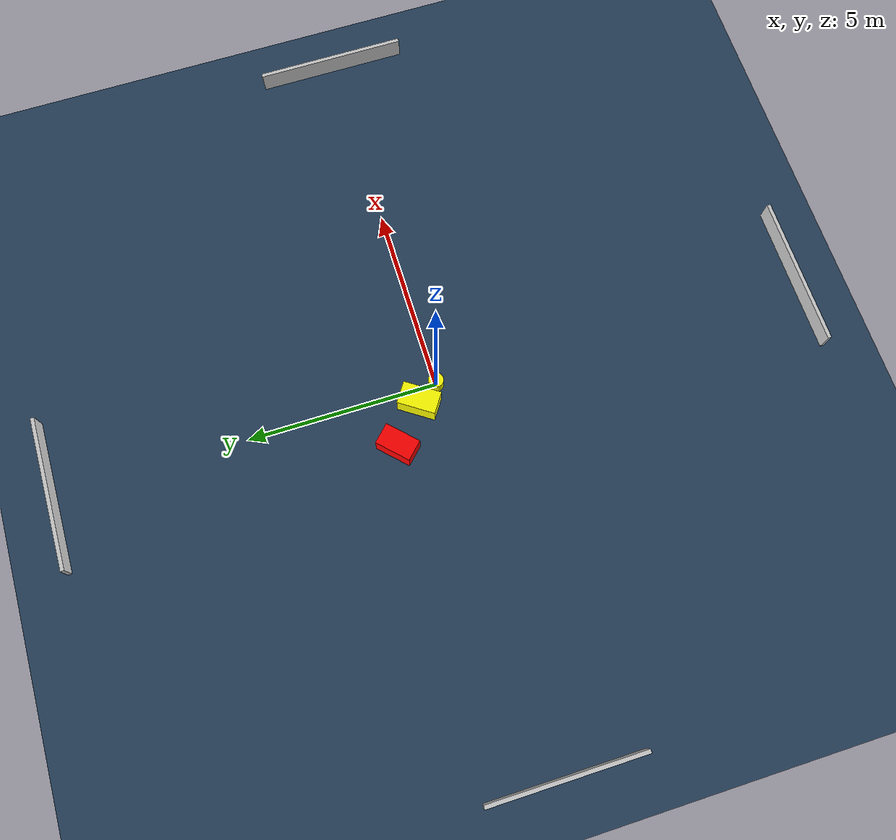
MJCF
<?xml version="1.0" ?>
<mujoco model="generated_environment">
  <option timestep="0.01" integrator="RK4" cone="elliptic"/>
  <default>
    <geom density="1"/>
  </default>
  <asset>
    <texture builtin="gradient" height="3072" name="skybox" rgb1="0.3 0.5 0.7" rgb2="0 0 0" type="skybox" width="512"/>
    <texture builtin="checker" height="300" name="groundplane" rgb1="0.2 0.3 0.4" rgb2="0.1 0.2 0.3" type="2d" width="300"/>
    <material name="groundplane" reflectance="0.2" texrepeat="5 5" texture="groundplane"/>
  </asset>
  <worldbody>
    <light dir="0 0 -1" directional="true" pos="0 0 1.5"/>
    <geom condim="3" friction="0.5 0.005 0.001" material="groundplane" name="floor" pos="0 0 0" size="0 0 0.05" type="plane"/>
    <body name="walls">
      <geom name="wall_1" condim="4" pos="-10.0 0.0 0.3" rgba="0.800000011920929 0.800000011920929 0.800000011920929 1.0" size="0.05 2.0 0.3" type="box"/>
      <geom name="wall_2" condim="4" pos="10.0 0.0 0.3" rgba="0.800000011920929 0.800000011920929 0.800000011920929 1.0" size="0.05 2.0 0.3" type="box"/>
      <geom name="wall_3" condim="4" pos="0.0 -10.0 0.3" rgba="0.800000011920929 0.800000011920929 0.800000011920929 1.0" size="2.0 0.05 0.3" type="box"/>
      <geom name="wall_4" condim="4" pos="0.0 10.0 0.3" rgba="0.800000011920929 0.800000011920929 0.800000011920929 1.0" size="2.0 0.05 0.3" type="box"/>
    </body>
    <body name="robot">
      <joint name="joint_x" type="slide" pos="0 0 0" axis="1 0 0"/>
      <joint name="joint_y" type="slide" pos="0 0 0" axis="0 1 0"/>
      <geom name="robot" type="cylinder" pos="0.0 0.0 0.2" size="0.2 0.2 0.0" mass="5.0" friction="1.0 0.005 0.0001" condim="4" rgba="1.0 1.0 0.0 1.0"/>
    </body>
    <body name="obstacle_1_movable">
      <geom name="obstacle_1_movable" condim="4" pos="-0.3804195226709527 0.5625353952984342 0.3" euler="0 0 55.77681157758339" friction="0.0 0.005 0.001" rgba="1.0 1.0 0.0 1.0" size="0.5005986713290415 0.2937946189260605 0.3" type="box" mass="0.1"/>
      <joint type="free"/>
    </body>
    <body name="obstacle_2_static">
      <geom name="obstacle_2_static" condim="4" pos="-1.3287323699698648 1.4140835677489978 0.3" euler="0 0 134.63302453064608" friction="0.0 0.005 0.001" rgba="1.0 0.0 0.0 1.0" size="0.28256462695568857 0.4783334532379325 0.3" type="box"/>
    </body>
  </worldbody>
  <actuator>
    <motor name="actuator_x" joint="joint_x" gear="1" ctrlrange="-1 1"/>
    <motor name="actuator_y" joint="joint_y" gear="1" ctrlrange="-1 1"/>
  </actuator>
</mujoco>
